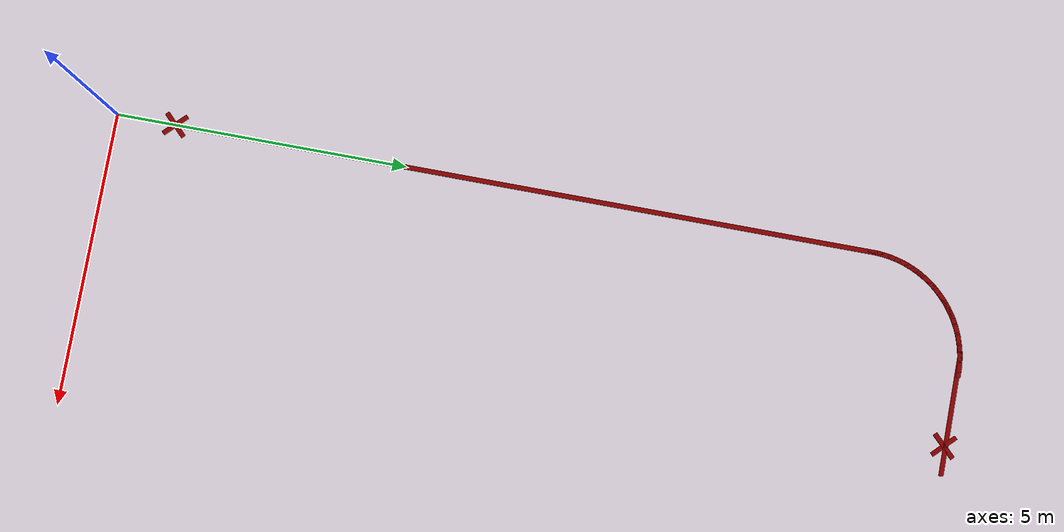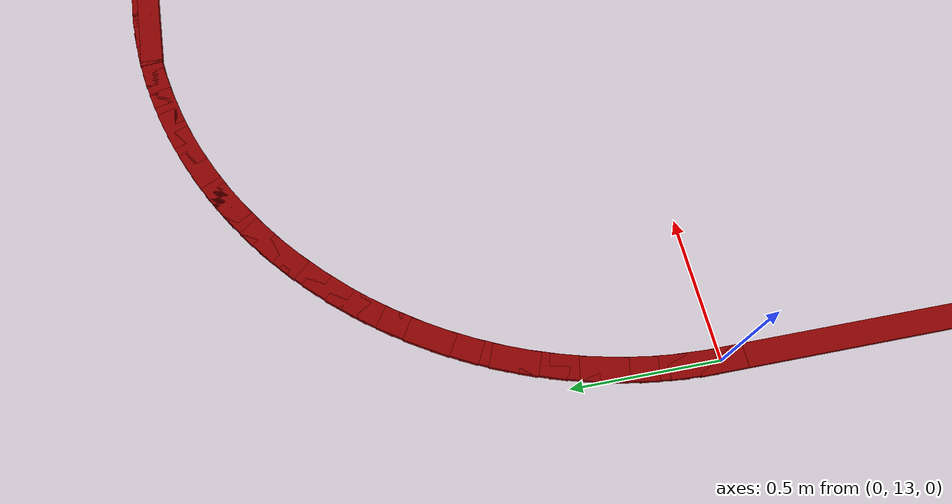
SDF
<sdf version="1.7">
 <world name="world_demo">
  <gravity>0 0 -9.8</gravity>
  <physics type="ode"><max_step_size>0.01</max_step_size><real_time_factor>1</real_time_factor></physics>
  <plugin name="ignition::gazebo::systems::Physics" filename="libignition-gazebo-physics-system.so"/>
  <plugin name="ignition::gazebo::systems::UserCommands" filename="libignition-gazebo-user-commands-system.so"/>
  <plugin name="ignition::gazebo::systems::SceneBroadcaster" filename="libignition-gazebo-scene-broadcaster-system.so"/>
  <plugin name="ignition::gazebo::systems::Imu" filename="ignition-gazebo-imu-system"/>
  <plugin name="ignition::gazebo::systems::Sensors" filename="ignition-gazebo-sensors-system">
   <render_engine>ogre2</render_engine>
  </plugin>
  <scene>
   <ambient>1 1 1 1</ambient>
   <background>0.3 0.7 0.9 1</background>
   <shadows>0</shadows>
   <grid>false</grid>
  </scene>
  <light type="directional" name="sun">
   <cast_shadows>0</cast_shadows>
   <pose>-5 -3 10 0 0 0</pose>
   <diffuse>1 1 1 1</diffuse>
   <specular>1 1 1 1</specular>
   <direction>0 0 -1</direction>
  </light>
  <model name="ground_plane">
   <static>true</static>
   <link name="link">
    <collision name="collision">
     <geometry><plane><normal>0.0 0.0 1</normal><size>1 1</size></plane></geometry>
    </collision>
   </link>
  </model>
  <model name="line">
   <static>true</static>
   <link name="link">
    <visual name="visual">
     <geometry><box><size>0.08 12 0.02</size></box></geometry>
     <material><ambient>0.55 0.0 0.0 1</ambient><diffuse>0.55 0.0 0.0 1</diffuse></material>
    </visual>
   </link>
   <pose>0 7 0.001 0 0 0</pose>
  </model>
  <model name="line2">
   <static>true</static>
   <link name="link">
    <visual name="visual">
     <geometry><box><size>2 0.08 0.02</size></box></geometry>
     <material><ambient>0.55 0.0 0.0 1</ambient><diffuse>0.55 0.0 0.0 1</diffuse></material>
    </visual>
   </link>
   <pose>2.5 14.73 0.001 0 0 0</pose>
  </model>
  <model name="cross_1_horizontal">
   <static>true</static>
   <link name="link">
    <visual name="visual">
     <geometry><box><size>0.50 0.08 0.02</size></box></geometry>
     <material><ambient>0.55 0.0 0.0 1</ambient><diffuse>0.55 0.0 0.0 1</diffuse></material>
    </visual>
   </link>
   <pose>3 14.7 0.001 0 0 0.7854</pose>
  </model>
  <model name="cross_1_vertical">
   <static>true</static>
   <link name="link">
    <visual name="visual">
     <geometry><box><size>0.08 0.50 0.02</size></box></geometry>
     <material><ambient>0.55 0.0 0.0 1</ambient><diffuse>0.55 0.0 0.0 1</diffuse></material>
    </visual>
   </link>
   <pose>3 14.7 0.001 0 0 0.7854</pose>
  </model>
  <model name="cross_2_horizontal">
   <static>true</static>
   <link name="link">
    <visual name="visual">
     <geometry><box><size>0.50 0.08 0.02</size></box></geometry>
     <material><ambient>0.55 0.0 0.0 1</ambient><diffuse>0.55 0.0 0.0 1</diffuse></material>
    </visual>
   </link>
   <pose>0 1 0.001 0 0 0.7854</pose>
  </model>
  <model name="cross_2_vertical">
   <static>true</static>
   <link name="link">
    <visual name="visual">
     <geometry><box><size>0.08 0.50 0.02</size></box></geometry>
     <material><ambient>0.55 0.0 0.0 1</ambient><diffuse>0.55 0.0 0.0 1</diffuse></material>
    </visual>
   </link>
   <pose>0 1 0.001 0 0 0.7854</pose>
  </model>
  <model name="curve_1">
   <static>true</static>
   <link name="link">
    <visual name="visual">
     <geometry><box><size>0.16 0.08 0.02</size></box></geometry>
     <material><ambient>0.55 0.0 0.0 1</ambient><diffuse>0.55 0.0 0.0 1</diffuse></material>
    </visual>
   </link>
   <pose>1.750 14.750 0.001 0 0 3.14159</pose>
  </model>
  <model name="curve_2">
   <static>true</static>
   <link name="link">
    <visual name="visual">
     <geometry><box><size>0.16 0.08 0.02</size></box></geometry>
     <material><ambient>0.55 0.0 0.0 1</ambient><diffuse>0.55 0.0 0.0 1</diffuse></material>
    </visual>
   </link>
   <pose>1.655 14.747 0.001 0 0 3.19576</pose>
  </model>
  <model name="curve_3">
   <static>true</static>
   <link name="link">
    <visual name="visual">
     <geometry><box><size>0.16 0.08 0.02</size></box></geometry>
     <material><ambient>0.55 0.0 0.0 1</ambient><diffuse>0.55 0.0 0.0 1</diffuse></material>
    </visual>
   </link>
   <pose>1.561 14.740 0.001 0 0 3.24992</pose>
  </model>
  <model name="curve_4">
   <static>true</static>
   <link name="link">
    <visual name="visual">
     <geometry><box><size>0.16 0.08 0.02</size></box></geometry>
     <material><ambient>0.55 0.0 0.0 1</ambient><diffuse>0.55 0.0 0.0 1</diffuse></material>
    </visual>
   </link>
   <pose>1.467 14.727 0.001 0 0 3.30409</pose>
  </model>
  <model name="curve_5">
   <static>true</static>
   <link name="link">
    <visual name="visual">
     <geometry><box><size>0.16 0.08 0.02</size></box></geometry>
     <material><ambient>0.55 0.0 0.0 1</ambient><diffuse>0.55 0.0 0.0 1</diffuse></material>
    </visual>
   </link>
   <pose>1.374 14.709 0.001 0 0 3.35825</pose>
  </model>
  <model name="curve_6">
   <static>true</static>
   <link name="link">
    <visual name="visual">
     <geometry><box><size>0.16 0.08 0.02</size></box></geometry>
     <material><ambient>0.55 0.0 0.0 1</ambient><diffuse>0.55 0.0 0.0 1</diffuse></material>
    </visual>
   </link>
   <pose>1.282 14.686 0.001 0 0 3.41242</pose>
  </model>
  <model name="curve_7">
   <static>true</static>
   <link name="link">
    <visual name="visual">
     <geometry><box><size>0.16 0.08 0.02</size></box></geometry>
     <material><ambient>0.55 0.0 0.0 1</ambient><diffuse>0.55 0.0 0.0 1</diffuse></material>
    </visual>
   </link>
   <pose>1.191 14.658 0.001 0 0 3.46658</pose>
  </model>
  <model name="curve_8">
   <static>true</static>
   <link name="link">
    <visual name="visual">
     <geometry><box><size>0.16 0.08 0.02</size></box></geometry>
     <material><ambient>0.55 0.0 0.0 1</ambient><diffuse>0.55 0.0 0.0 1</diffuse></material>
    </visual>
   </link>
   <pose>1.102 14.626 0.001 0 0 3.52075</pose>
  </model>
  <model name="curve_9">
   <static>true</static>
   <link name="link">
    <visual name="visual">
     <geometry><box><size>0.16 0.08 0.02</size></box></geometry>
     <material><ambient>0.55 0.0 0.0 1</ambient><diffuse>0.55 0.0 0.0 1</diffuse></material>
    </visual>
   </link>
   <pose>1.015 14.588 0.001 0 0 3.57492</pose>
  </model>
  <model name="curve_10">
   <static>true</static>
   <link name="link">
    <visual name="visual">
     <geometry><box><size>0.16 0.08 0.02</size></box></geometry>
     <material><ambient>0.55 0.0 0.0 1</ambient><diffuse>0.55 0.0 0.0 1</diffuse></material>
    </visual>
   </link>
   <pose>0.930 14.546 0.001 0 0 3.62908</pose>
  </model>
  <model name="curve_11">
   <static>true</static>
   <link name="link">
    <visual name="visual">
     <geometry><box><size>0.16 0.08 0.02</size></box></geometry>
     <material><ambient>0.55 0.0 0.0 1</ambient><diffuse>0.55 0.0 0.0 1</diffuse></material>
    </visual>
   </link>
   <pose>0.848 14.500 0.001 0 0 3.68325</pose>
  </model>
  <model name="curve_12">
   <static>true</static>
   <link name="link">
    <visual name="visual">
     <geometry><box><size>0.16 0.08 0.02</size></box></geometry>
     <material><ambient>0.55 0.0 0.0 1</ambient><diffuse>0.55 0.0 0.0 1</diffuse></material>
    </visual>
   </link>
   <pose>0.768 14.448 0.001 0 0 3.73741</pose>
  </model>
  <model name="curve_13">
   <static>true</static>
   <link name="link">
    <visual name="visual">
     <geometry><box><size>0.16 0.08 0.02</size></box></geometry>
     <material><ambient>0.55 0.0 0.0 1</ambient><diffuse>0.55 0.0 0.0 1</diffuse></material>
    </visual>
   </link>
   <pose>0.691 14.393 0.001 0 0 3.79158</pose>
  </model>
  <model name="curve_14">
   <static>true</static>
   <link name="link">
    <visual name="visual">
     <geometry><box><size>0.16 0.08 0.02</size></box></geometry>
     <material><ambient>0.55 0.0 0.0 1</ambient><diffuse>0.55 0.0 0.0 1</diffuse></material>
    </visual>
   </link>
   <pose>0.617 14.334 0.001 0 0 3.84574</pose>
  </model>
  <model name="curve_15">
   <static>true</static>
   <link name="link">
    <visual name="visual">
     <geometry><box><size>0.16 0.08 0.02</size></box></geometry>
     <material><ambient>0.55 0.0 0.0 1</ambient><diffuse>0.55 0.0 0.0 1</diffuse></material>
    </visual>
   </link>
   <pose>0.547 14.270 0.001 0 0 3.89991</pose>
  </model>
  <model name="curve_16">
   <static>true</static>
   <link name="link">
    <visual name="visual">
     <geometry><box><size>0.16 0.08 0.02</size></box></geometry>
     <material><ambient>0.55 0.0 0.0 1</ambient><diffuse>0.55 0.0 0.0 1</diffuse></material>
    </visual>
   </link>
   <pose>0.480 14.203 0.001 0 0 3.95407</pose>
  </model>
  <model name="curve_17">
   <static>true</static>
   <link name="link">
    <visual name="visual">
     <geometry><box><size>0.16 0.08 0.02</size></box></geometry>
     <material><ambient>0.55 0.0 0.0 1</ambient><diffuse>0.55 0.0 0.0 1</diffuse></material>
    </visual>
   </link>
   <pose>0.416 14.133 0.001 0 0 4.00824</pose>
  </model>
  <model name="curve_18">
   <static>true</static>
   <link name="link">
    <visual name="visual">
     <geometry><box><size>0.16 0.08 0.02</size></box></geometry>
     <material><ambient>0.55 0.0 0.0 1</ambient><diffuse>0.55 0.0 0.0 1</diffuse></material>
    </visual>
   </link>
   <pose>0.357 14.059 0.001 0 0 4.06240</pose>
  </model>
  <model name="curve_19">
   <static>true</static>
   <link name="link">
    <visual name="visual">
     <geometry><box><size>0.16 0.08 0.02</size></box></geometry>
     <material><ambient>0.55 0.0 0.0 1</ambient><diffuse>0.55 0.0 0.0 1</diffuse></material>
    </visual>
   </link>
   <pose>0.302 13.982 0.001 0 0 4.11657</pose>
  </model>
  <model name="curve_20">
   <static>true</static>
   <link name="link">
    <visual name="visual">
     <geometry><box><size>0.16 0.08 0.02</size></box></geometry>
     <material><ambient>0.55 0.0 0.0 1</ambient><diffuse>0.55 0.0 0.0 1</diffuse></material>
    </visual>
   </link>
   <pose>0.250 13.902 0.001 0 0 4.17074</pose>
  </model>
  <model name="curve_21">
   <static>true</static>
   <link name="link">
    <visual name="visual">
     <geometry><box><size>0.16 0.08 0.02</size></box></geometry>
     <material><ambient>0.55 0.0 0.0 1</ambient><diffuse>0.55 0.0 0.0 1</diffuse></material>
    </visual>
   </link>
   <pose>0.204 13.820 0.001 0 0 4.22490</pose>
  </model>
  <model name="curve_22">
   <static>true</static>
   <link name="link">
    <visual name="visual">
     <geometry><box><size>0.16 0.08 0.02</size></box></geometry>
     <material><ambient>0.55 0.0 0.0 1</ambient><diffuse>0.55 0.0 0.0 1</diffuse></material>
    </visual>
   </link>
   <pose>0.162 13.735 0.001 0 0 4.27907</pose>
  </model>
  <model name="curve_23">
   <static>true</static>
   <link name="link">
    <visual name="visual">
     <geometry><box><size>0.16 0.08 0.02</size></box></geometry>
     <material><ambient>0.55 0.0 0.0 1</ambient><diffuse>0.55 0.0 0.0 1</diffuse></material>
    </visual>
   </link>
   <pose>0.124 13.648 0.001 0 0 4.33323</pose>
  </model>
  <model name="curve_24">
   <static>true</static>
   <link name="link">
    <visual name="visual">
     <geometry><box><size>0.16 0.08 0.02</size></box></geometry>
     <material><ambient>0.55 0.0 0.0 1</ambient><diffuse>0.55 0.0 0.0 1</diffuse></material>
    </visual>
   </link>
   <pose>0.092 13.559 0.001 0 0 4.38740</pose>
  </model>
  <model name="curve_25">
   <static>true</static>
   <link name="link">
    <visual name="visual">
     <geometry><box><size>0.16 0.08 0.02</size></box></geometry>
     <material><ambient>0.55 0.0 0.0 1</ambient><diffuse>0.55 0.0 0.0 1</diffuse></material>
    </visual>
   </link>
   <pose>0.064 13.468 0.001 0 0 4.44156</pose>
  </model>
  <model name="curve_26">
   <static>true</static>
   <link name="link">
    <visual name="visual">
     <geometry><box><size>0.16 0.08 0.02</size></box></geometry>
     <material><ambient>0.55 0.0 0.0 1</ambient><diffuse>0.55 0.0 0.0 1</diffuse></material>
    </visual>
   </link>
   <pose>0.041 13.376 0.001 0 0 4.49573</pose>
  </model>
  <model name="curve_27">
   <static>true</static>
   <link name="link">
    <visual name="visual">
     <geometry><box><size>0.16 0.08 0.02</size></box></geometry>
     <material><ambient>0.55 0.0 0.0 1</ambient><diffuse>0.55 0.0 0.0 1</diffuse></material>
    </visual>
   </link>
   <pose>0.023 13.283 0.001 0 0 4.54989</pose>
  </model>
  <model name="curve_28">
   <static>true</static>
   <link name="link">
    <visual name="visual">
     <geometry><box><size>0.16 0.08 0.02</size></box></geometry>
     <material><ambient>0.55 0.0 0.0 1</ambient><diffuse>0.55 0.0 0.0 1</diffuse></material>
    </visual>
   </link>
   <pose>0.010 13.189 0.001 0 0 4.60406</pose>
  </model>
  <model name="curve_29">
   <static>true</static>
   <link name="link">
    <visual name="visual">
     <geometry><box><size>0.16 0.08 0.02</size></box></geometry>
     <material><ambient>0.55 0.0 0.0 1</ambient><diffuse>0.55 0.0 0.0 1</diffuse></material>
    </visual>
   </link>
   <pose>0.003 13.095 0.001 0 0 4.65822</pose>
  </model>
  <model name="curve_30">
   <static>true</static>
   <link name="link">
    <visual name="visual">
     <geometry><box><size>0.16 0.08 0.02</size></box></geometry>
     <material><ambient>0.55 0.0 0.0 1</ambient><diffuse>0.55 0.0 0.0 1</diffuse></material>
    </visual>
   </link>
   <pose>0.000 13.000 0.001 0 0 4.71239</pose>
  </model>
 </world>
</sdf>
